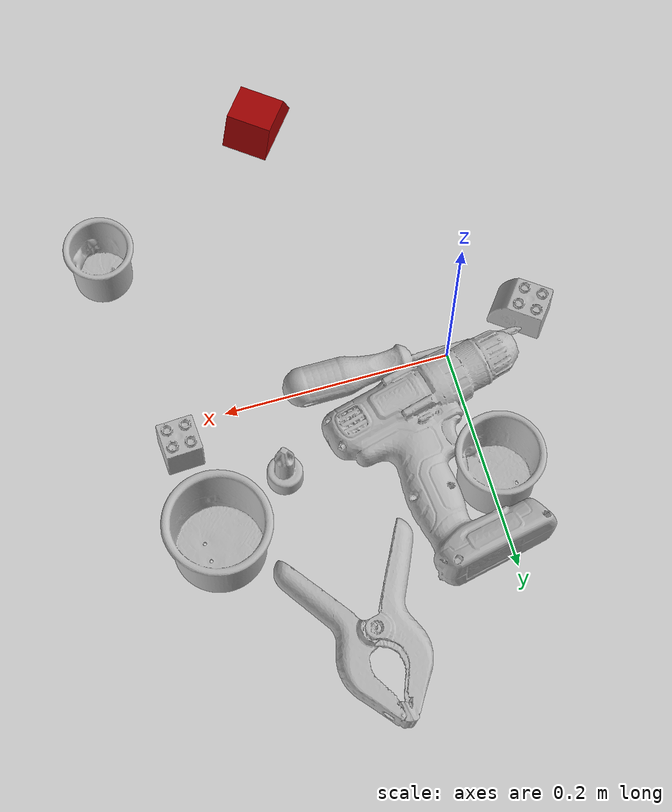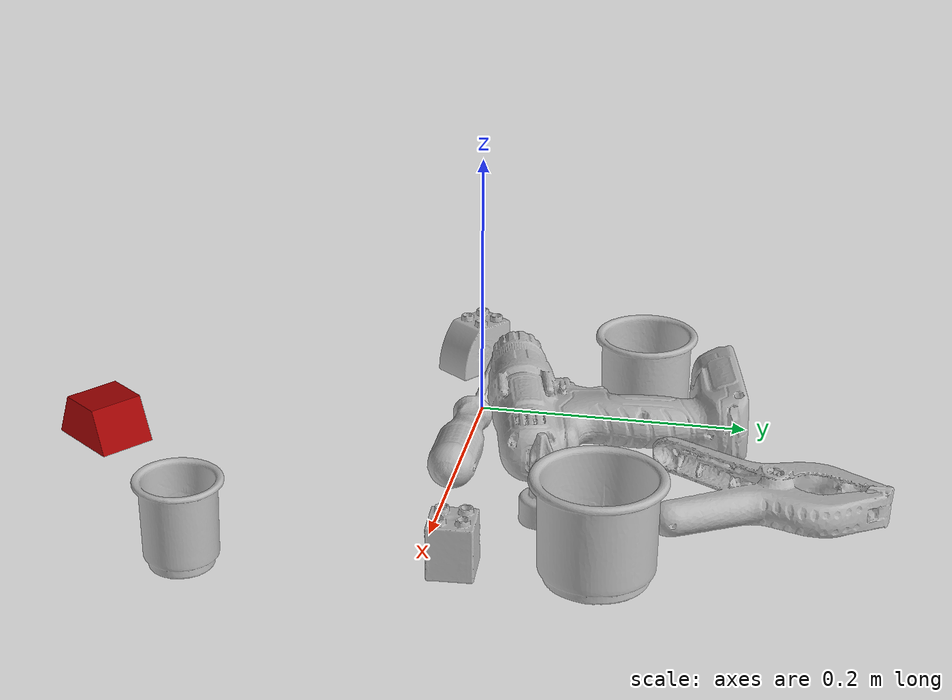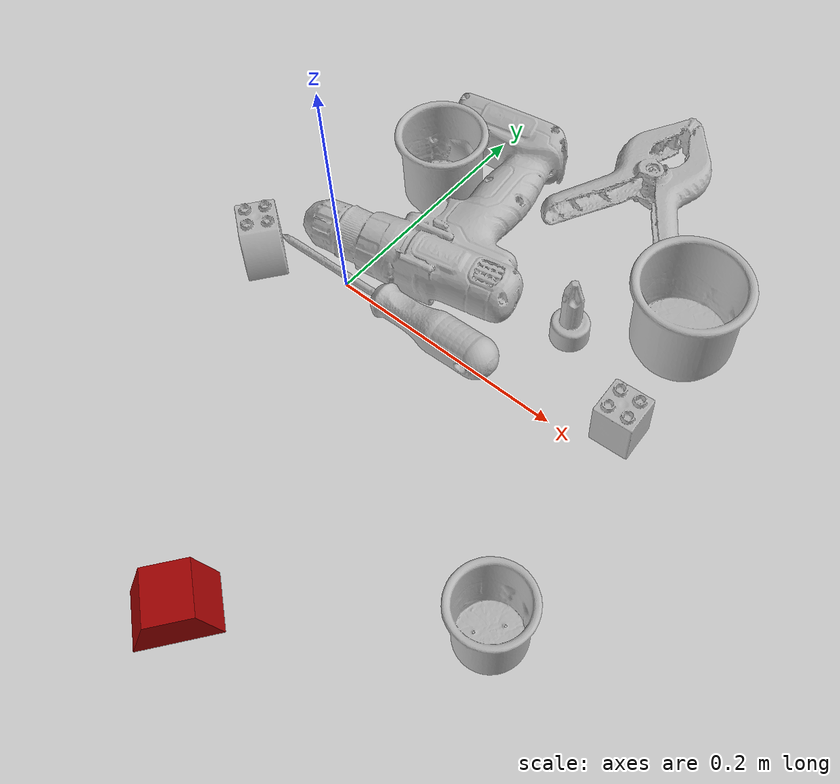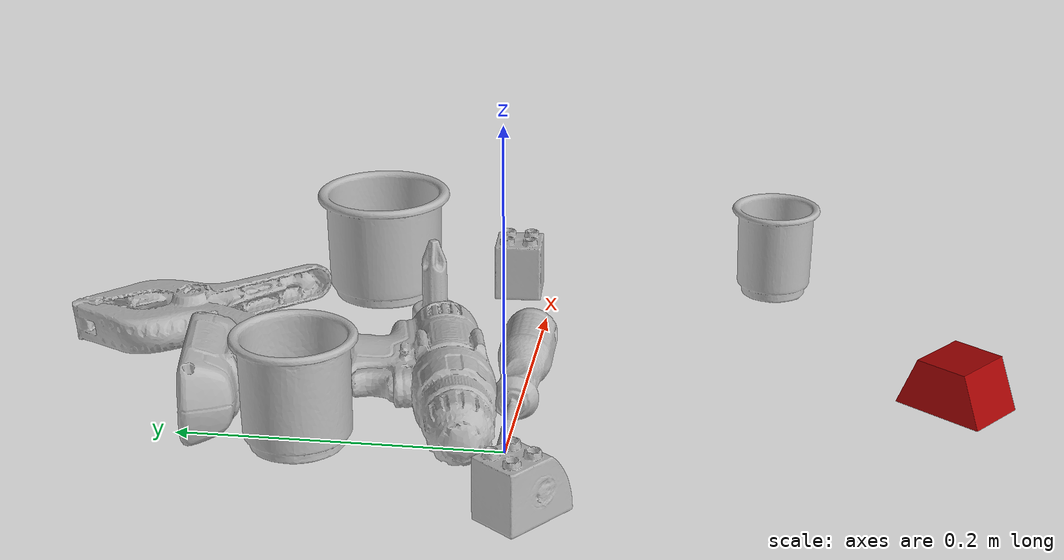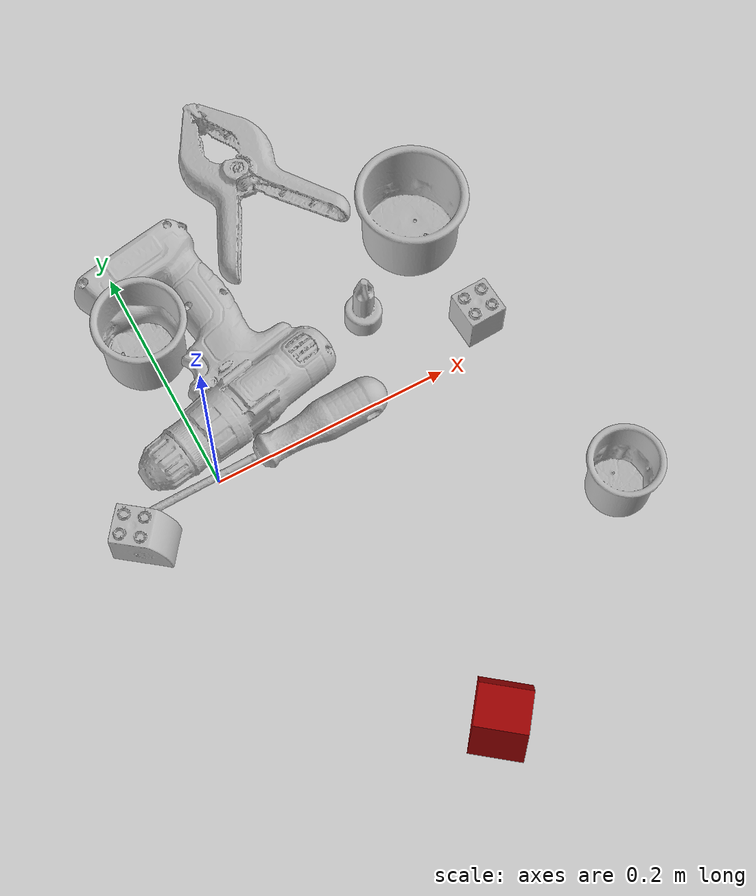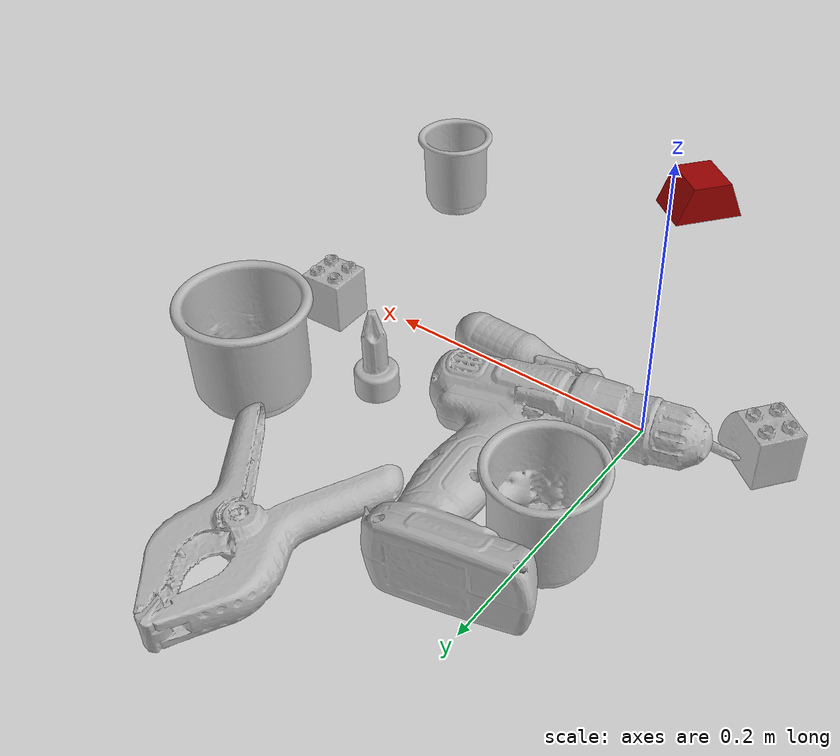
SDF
<sdf version="1.4">
  <world name="default">
    <light name="light1" type="point">
      <pose>0 0 1 0 0 0</pose>
      <diffuse>3 3 3 1</diffuse>
      <specular>3 3 3 1</specular>
    </light>
    <light name="light2" type="point">
      <pose>0 0.5 2 0 0 0</pose>
      <diffuse>1 1 1 1</diffuse>
      <specular>1 1 1 1</specular>
    </light>
    <light name="light3" type="point">
      <pose>0 0.5 2 0 0 0</pose>
      <diffuse>3 3 3 1</diffuse>
      <specular>3 3 3 1</specular>
    </light>
    <scene>
      <ambient>0.7 0.7 0.7</ambient>
    </scene>
    <model name="cup1">
      <link name="link_cup1">
        <collision name="default">
          <geometry>
            <mesh>
              <uri>model://b_cups/collision_meshes/collision.obj</uri>
              <scale>1.0 1.0 1.0</scale>
            </mesh>
          </geometry>
          <surface>
            <friction>
              <ode>
                <mu>0.5</mu>
                <mu2>0.5</mu2>
              </ode>
            </friction>
          <contact>
        <ode>
            <max_vel>0</max_vel>
            <min_depth>0.0001</min_depth>
            <kp>1e8</kp>
        </ode>
    </contact></surface>
        </collision>
        <visual name="default">
          <geometry>
            <mesh>
              <uri>model://b_cups/visual_meshes/visual.dae</uri>
              <scale>1.0 1.0 1.0</scale>
            </mesh>
          </geometry>
        </visual>
        <inertial>
          <mass>0.048613063991069794</mass>
          <pose>0.0005182003951631486 0.0018058597343042493 -0.0013381808530539274 0.11356326710502956 0.03872484102688303 -0.34569225342860055</pose>
          <inertia>
            <ixx>3.1820662e-05</ixx>
            <iyy>3.121653e-05</iyy>
            <izz>2.6776484e-05</izz>
            <ixy>0</ixy>
            <ixz>0</ixz>
            <iyz>0</iyz>
          </inertia>
        </inertial>
      </link>
      <pose>0.2694486975669861 -0.1530240774154663 0.03199610114097595 -0.007643090706780243 -0.0038022602127581193 -1.4457085819260802</pose>
    </model>
    <model name="cup2">
      <link name="link_cup2">
        <collision name="default">
          <geometry>
            <mesh>
              <uri>model://e_cups/collision_meshes/collision.obj</uri>
              <scale>1.0 1.0 1.0</scale>
            </mesh>
          </geometry>
          <surface>
            <friction>
              <ode>
                <mu>0.5</mu>
                <mu2>0.5</mu2>
              </ode>
            </friction>
          <contact>
        <ode>
            <max_vel>0</max_vel>
            <min_depth>0.0001</min_depth>
            <kp>1e8</kp>
        </ode>
    </contact></surface>
        </collision>
        <visual name="default">
          <geometry>
            <mesh>
              <uri>model://e_cups/visual_meshes/visual.dae</uri>
              <scale>1.0 1.0 1.0</scale>
            </mesh>
          </geometry>
        </visual>
        <inertial>
          <mass>0.07592208683490753</mass>
          <pose>0.0011355738388374448 0.002879784908145666 -0.003882972290739417 0.695241209711482 0.0876783799590152 -0.5235234031188288</pose>
          <inertia>
            <ixx>6.6944274e-05</ixx>
            <iyy>6.996636e-05</iyy>
            <izz>6.400647e-05</izz>
            <ixy>0</ixy>
            <ixz>0</ixz>
            <iyz>0</iyz>
          </inertia>
        </inertial>
      </link>
      <pose>-0.0033405739814043045 0.12338577955961227 0.03560018911957741 -1.3538595782124707e-05 7.320962171032489e-06 -0.5163797820495429</pose>
    </model>
    <model name="cup3">
      <link name="link_cup3">
        <collision name="default">
          <geometry>
            <mesh>
              <uri>model://h_cups/collision_meshes/collision.obj</uri>
              <scale>1.0 1.0 1.0</scale>
            </mesh>
          </geometry>
          <surface>
            <friction>
              <ode>
                <mu>0.5</mu>
                <mu2>0.5</mu2>
              </ode>
            </friction>
          <contact>
        <ode>
            <max_vel>0</max_vel>
            <min_depth>0.0001</min_depth>
            <kp>1e8</kp>
        </ode>
    </contact></surface>
        </collision>
        <visual name="default">
          <geometry>
            <mesh>
              <uri>model://h_cups/visual_meshes/visual.dae</uri>
              <scale>1.0 1.0 1.0</scale>
            </mesh>
          </geometry>
        </visual>
        <inertial>
          <mass>0.07054857164621353</mass>
          <pose>-2.7030857381760143e-05 0.0002301865170011297 -0.0018405391601845622 -0.024362378998248252 0.0654525662963329 0.12884761756284485</pose>
          <inertia>
            <ixx>9.1110225e-05</ixx>
            <iyy>9.002296e-05</iyy>
            <izz>9.5549614e-05</izz>
            <ixy>0</ixy>
            <ixz>0</ixz>
            <iyz>0</iyz>
          </inertia>
        </inertial>
      </link>
      <pose>0.23580466210842133 0.11895380169153214 0.037758003920316696 1.1912504727096306e-07 5.2346194700350975e-08 3.1383681302051536</pose>
    </model>
    <model name="toy1">
      <link name="link_toy1">
        <collision name="default">
          <geometry>
            <mesh>
              <uri>model://f_lego_duplo/collision_meshes/collision.obj</uri>
              <scale>1.0 1.0 1.0</scale>
            </mesh>
          </geometry>
          <surface>
            <friction>
              <ode>
                <mu>0.5</mu>
                <mu2>0.5</mu2>
              </ode>
            </friction>
          <contact>
        <ode>
            <max_vel>0</max_vel>
            <min_depth>0.0001</min_depth>
            <kp>1e8</kp>
        </ode>
    </contact></surface>
        </collision>
        <visual name="default">
          <geometry>
            <mesh>
              <uri>model://f_lego_duplo/visual_meshes/visual.dae</uri>
              <scale>1.0 1.0 1.0</scale>
            </mesh>
          </geometry>
        </visual>
        <inertial>
          <mass>0.027637142688035965</mass>
          <pose>2.3694037736277096e-05 0.0001339315203949809 0.0018837873358279467 0.029838580482088747 -0.014425059949813135 -0.6756637855802661</pose>
          <inertia>
            <ixx>5.8398805e-06</ixx>
            <iyy>5.8919077e-06</iyy>
            <izz>5.069264e-06</izz>
            <ixy>0</ixy>
            <ixz>0</ixz>
            <iyz>0</iyz>
          </inertia>
        </inertial>
      </link>
      <pose>0.24532723426818848 0.02495112456381321 0.02187100425362587 -1.9977359361212613e-07 2.5845416822029285e-07 1.6256248475027668</pose>
    </model>
    <model name="toy2">
      <link name="link_toy2">
        <collision name="default">
          <geometry>
            <mesh>
              <uri>model://d_toy_airplane/collision_meshes/collision.obj</uri>
              <scale>1.0 1.0 1.0</scale>
            </mesh>
          </geometry>
          <surface>
            <friction>
              <ode>
                <mu>0.5</mu>
                <mu2>0.5</mu2>
              </ode>
            </friction>
          <contact>
        <ode>
            <max_vel>0</max_vel>
            <min_depth>0.0001</min_depth>
            <kp>1e8</kp>
        </ode>
    </contact></surface>
        </collision>
        <visual name="default">
          <geometry>
            <mesh>
              <uri>model://d_toy_airplane/visual_meshes/visual.dae</uri>
              <scale>1.0 1.0 1.0</scale>
            </mesh>
          </geometry>
        </visual>
        <inertial>
          <mass>0.017859498038887978</mass>
          <pose>9.410335042048246e-05 -5.809318827232346e-05 -0.011728094890713692 0.0002667298520076861 0.004679004392369758 0.5194091511239993</pose>
          <inertia>
            <ixx>5.35393e-06</ixx>
            <iyy>5.3579683e-06</iyy>
            <izz>1.6163864e-06</izz>
            <ixy>0</ixy>
            <ixz>0</ixz>
            <iyz>0</iyz>
          </inertia>
        </inertial>
      </link>
      <pose>0.16647009551525116 0.07124974578619003 0.03333931788802147 0.00015315006751819986 -1.7725756961224727e-05 0.7934424341791477</pose>
    </model>
    <model name="toy3">
      <link name="link_toy3">
        <collision name="default">
          <geometry>
            <mesh>
              <uri>model://prism/collision_meshes/collision.obj</uri>
              <scale>0.5 0.5 0.5</scale>
            </mesh>
          </geometry>
          <surface>
            <friction>
              <ode>
                <mu>0.5</mu>
                <mu2>0.5</mu2>
              </ode>
            </friction>
          <contact>
        <ode>
            <max_vel>0</max_vel>
            <min_depth>0.0001</min_depth>
            <kp>1e8</kp>
        </ode>
    </contact></surface>
        </collision>
        <visual name="default">
          <geometry>
            <mesh>
              <uri>model://prism/visual_meshes/visual.dae</uri>
              <scale>0.5 0.5 0.5</scale>
            </mesh>
          </geometry>
        </visual>
        <inertial>
          <mass>0.04761093109846115</mass>
          <pose>-4.92679828312248e-05 -2.480786349678965e-07 -0.001693455153144896 0.0 0.006559181231804993 0.0</pose>
          <inertia>
            <ixx>1.074207e-05</ixx>
            <iyy>1.2981929e-05</iyy>
            <izz>1.590131e-05</izz>
            <ixy>0</ixy>
            <ixz>0</ixz>
            <iyz>0</iyz>
          </inertia>
        </inertial>
      </link>
      <pose>0.0992957130074501 -0.26711422204971313 0.016084996983408928 1.1151673195985987e-08 -3.759906099310747e-08 0.910153064148883</pose>
    </model>
    <model name="toy4">
      <link name="link_toy4">
        <collision name="default">
          <geometry>
            <mesh>
              <uri>model://d_lego_duplo/collision_meshes/collision.obj</uri>
              <scale>1.0 1.0 1.0</scale>
            </mesh>
          </geometry>
          <surface>
            <friction>
              <ode>
                <mu>0.5</mu>
                <mu2>0.5</mu2>
              </ode>
            </friction>
          <contact>
        <ode>
            <max_vel>0</max_vel>
            <min_depth>0.0001</min_depth>
            <kp>1e8</kp>
        </ode>
    </contact></surface>
        </collision>
        <visual name="default">
          <geometry>
            <mesh>
              <uri>model://d_lego_duplo/visual_meshes/visual.dae</uri>
              <scale>1.0 1.0 1.0</scale>
            </mesh>
          </geometry>
        </visual>
        <inertial>
          <mass>0.06000049039721489</mass>
          <pose>0.0028305640444159508 0.0001636611996218562 0.000858980929479003 0.08010949527318252 -0.38355210287845315 0.0010297055105996263</pose>
          <inertia>
            <ixx>1.1615211e-05</ixx>
            <iyy>1.6485134e-05</iyy>
            <izz>1.5897598e-05</izz>
            <ixy>0</ixy>
            <ixz>0</ixz>
            <iyz>0</iyz>
          </inertia>
        </inertial>
      </link>
      <pose>-0.07163237780332565 -0.019867395982146263 0.021740004420280457 4.1298667433731116e-08 1.7118143346340425e-07 2.491132431118125</pose>
    </model>
    <model name="hardware1">
      <link name="link_hardware1">
        <collision name="default">
          <geometry>
            <mesh>
              <uri>model://phillips_screwdriver/collision_meshes/collision.obj</uri>
              <scale>1.0 1.0 1.0</scale>
            </mesh>
          </geometry>
          <surface>
            <friction>
              <ode>
                <mu>0.5</mu>
                <mu2>0.5</mu2>
              </ode>
            </friction>
          <contact>
        <ode>
            <max_vel>0</max_vel>
            <min_depth>0.0001</min_depth>
            <kp>1e8</kp>
        </ode>
    </contact></surface>
        </collision>
        <visual name="default">
          <geometry>
            <mesh>
              <uri>model://phillips_screwdriver/visual_meshes/visual.dae</uri>
              <scale>1.0 1.0 1.0</scale>
            </mesh>
          </geometry>
        </visual>
        <inertial>
          <mass>0.11704345047473907</mass>
          <pose>-0.04777182638645172 0.0010362302418798208 -0.0004555549821816385 -0.1571668982332543 0.0058509943133797405 -0.002156735283865719</pose>
          <inertia>
            <ixx>1.3751404e-05</ixx>
            <iyy>0.00017241857</iyy>
            <izz>0.0001725651</izz>
            <ixy>0</ixy>
            <ixz>0</ixz>
            <iyz>0</iyz>
          </inertia>
        </inertial>
      </link>
      <pose>0.04321993142366409 0.0010693732183426619 0.016168279573321342 -0.006075553616196351 0.027662486514402406 -3.121738303284265</pose>
    </model>
    <model name="hardware2">
      <link name="link_hardware2">
        <collision name="default">
          <geometry>
            <mesh>
              <uri>model://large_clamp/collision_meshes/collision.obj</uri>
              <scale>1.0 1.0 1.0</scale>
            </mesh>
          </geometry>
          <surface>
            <friction>
              <ode>
                <mu>0.5</mu>
                <mu2>0.5</mu2>
              </ode>
            </friction>
          <contact>
        <ode>
            <max_vel>0</max_vel>
            <min_depth>0.0001</min_depth>
            <kp>1e8</kp>
        </ode>
    </contact></surface>
        </collision>
        <visual name="default">
          <geometry>
            <mesh>
              <uri>model://large_clamp/visual_meshes/visual.dae</uri>
              <scale>1.0 1.0 1.0</scale>
            </mesh>
          </geometry>
        </visual>
        <inertial>
          <mass>0.18953841924667358</mass>
          <pose>0.00636935792863369 0.0003585682134144008 -0.00018398056272417307 -0.002133075536327147 0.009671586607470332 0.026633167384546762</pose>
          <inertia>
            <ixx>0.00016722476</ixx>
            <iyy>0.0003175689</iyy>
            <izz>0.00045940367</izz>
            <ixy>0</ixy>
            <ixz>0</ixz>
            <iyz>0</iyz>
          </inertia>
        </inertial>
      </link>
      <pose>0.13419929146766663 0.22629278898239136 0.018503759056329727 -0.011646250619317004 0.04693000964417406 1.6386866419696269</pose>
    </model>
    <model name="hardware3">
      <link name="link_hardware3">
        <collision name="default">
          <geometry>
            <mesh>
              <uri>model://power_drill/collision_meshes/collision.obj</uri>
              <scale>1.0 1.0 1.0</scale>
            </mesh>
          </geometry>
          <surface>
            <friction>
              <ode>
                <mu>0.5</mu>
                <mu2>0.5</mu2>
              </ode>
            </friction>
          <contact>
        <ode>
            <max_vel>0</max_vel>
            <min_depth>0.0001</min_depth>
            <kp>1e8</kp>
        </ode>
    </contact></surface>
        </collision>
        <visual name="default">
          <geometry>
            <mesh>
              <uri>model://power_drill/visual_meshes/visual.dae</uri>
              <scale>1.0 1.0 1.0</scale>
            </mesh>
          </geometry>
        </visual>
        <inertial>
          <mass>0.5207164287567139</mass>
          <pose>-0.014780543744564056 0.014369428157806396 0.0012414171360433102 0.004609162650930739 0.004073022346756156 -0.183626968168983</pose>
          <inertia>
            <ixx>0.0021219437</ixx>
            <iyy>0.00083487434</iyy>
            <izz>0.002802402</izz>
            <ixy>0</ixy>
            <ixz>0</ixz>
            <iyz>0</iyz>
          </inertia>
        </inertial>
      </link>
      <pose>0.020297352224588394 0.10277413576841354 0.02731245756149292 -0.030305874041698058 -0.04725317750959366 -2.9146751032448606</pose>
    </model>
  <physics type="ode">
      <max_contacts>50</max_contacts>
      <ode>
        <solver>
          <type>quick</type>
          <iters>75</iters>
        </solver>
        <constraints>
          <contact_max_correcting_vel>0</contact_max_correcting_vel>
          <contact_surface_layer>0</contact_surface_layer>
        </constraints>
      </ode>
    </physics></world>
</sdf>
